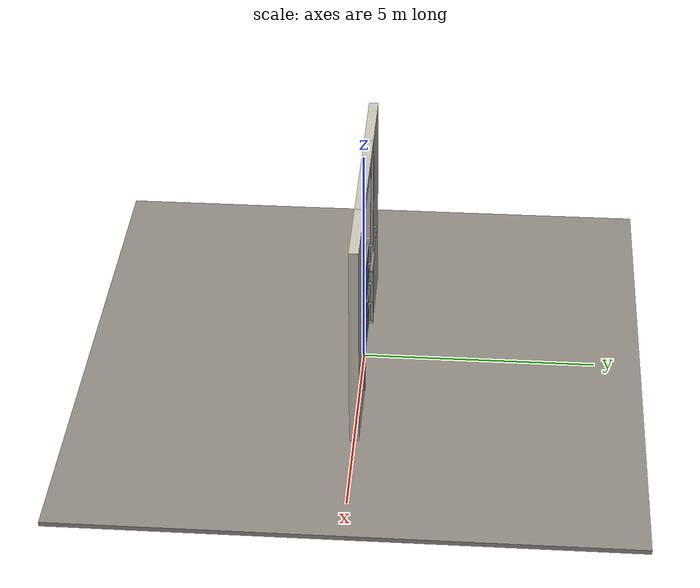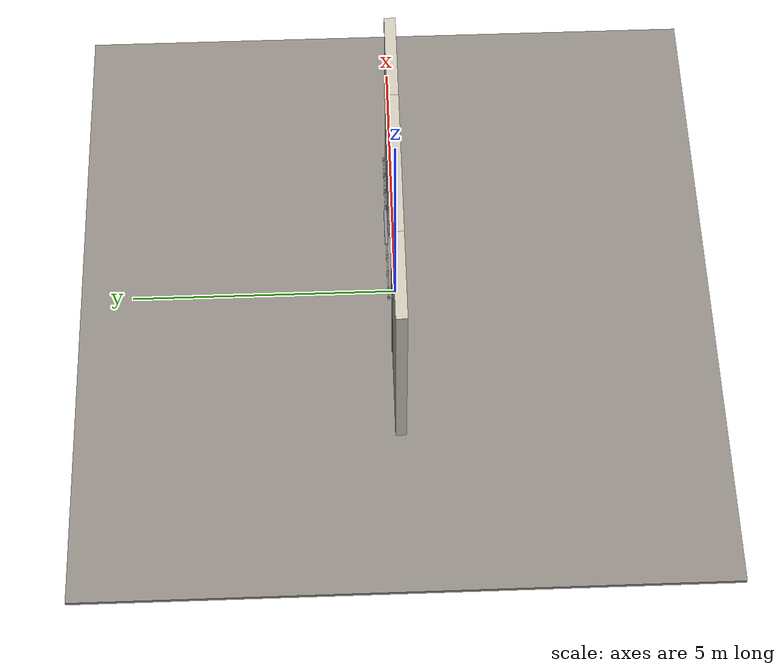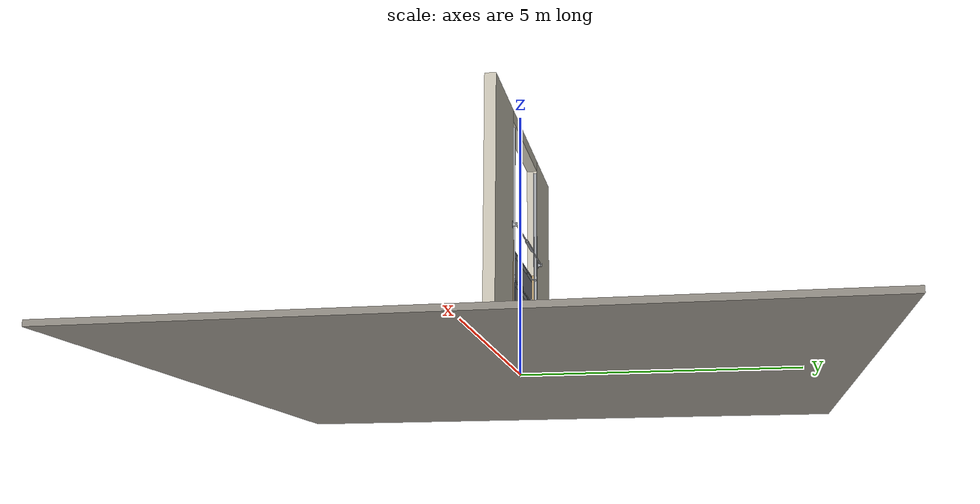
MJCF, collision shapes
<?xml version="1.0" ?>
<mujoco model="db0806_garage_sectional_full">
  <compiler angle="radian" meshdir="../../hardware" texturedir="../../textures" autolimits="true" inertiafromgeom="false"/>
  <option timestep="0.002" integrator="implicitfast" cone="elliptic" impratio="10" noslip_iterations="3">
    <flag multiccd="enable"/>
  </option>
  <size memory="16M"/>
  <default>
    <geom condim="4" solref="0.005 1" solimp="0.95 0.99 0.001"/>
    <joint solreflimit="0.005 1" solimplimit="0.95 0.99 0.001"/>
    <tendon solreflimit="0.005 1"/>
    <equality solref="0.002 1"/>
  </default>
  <visual>
    <headlight ambient="0.4 0.4 0.4" diffuse="0.7 0.7 0.7" specular="0.2 0.2 0.2"/>
    <quality shadowsize="4096"/>
    <map znear="0.01" zfar="60"/>
  </visual>
  <asset>
    <mesh name="pull_bdc5e965ab" file="pull_bdc5e965ab.obj"/>
    <material name="mat_floor" rgba="0.55 0.53 0.5 1" specular="0.2" shininess="0.15" reflectance="0"/>
    <material name="mat_wall" rgba="0.78 0.76 0.7 1" specular="0.2" shininess="0.1" reflectance="0"/>
    <material name="mat_frame" rgba="0.82 0.7 0.5 1" specular="0.2" shininess="0.45" reflectance="0"/>
    <material name="mat_track" rgba="0.65 0.66 0.68 1" specular="0.74" shininess="0.5" reflectance="0.36"/>
    <material name="mat_section_0" rgba="0.5 0.51 0.53 1" specular="0.23" shininess="0.37" reflectance="0.02"/>
    <material name="mat_glass" rgba="0.85 0.92 0.95 0.25" specular="0.2" shininess="0.95" reflectance="0.1"/>
    <material name="mat_section_1" rgba="0.5 0.51 0.53 1" specular="0.23" shininess="0.37" reflectance="0.02"/>
    <material name="mat_hinge_line" rgba="0.2 0.2 0.2 1" specular="0.2" shininess="0.3" reflectance="0"/>
    <material name="mat_section_2" rgba="0.5 0.51 0.53 1" specular="0.23" shininess="0.37" reflectance="0.02"/>
    <material name="mat_section_3" rgba="0.5 0.51 0.53 1" specular="0.23" shininess="0.37" reflectance="0.02"/>
    <material name="mat_spring" rgba="0.55 0.56 0.58 1" specular="0.8" shininess="0.55" reflectance="0.4"/>
    <material name="mat_op_black_matte_metal" rgba="0.05 0.05 0.05 1" specular="0.38" shininess="0.3" reflectance="0.12"/>
    <texture name="skybox" type="skybox" builtin="gradient" rgb1="0.6 0.7 0.85" rgb2="0.9 0.92 0.95" width="256" height="256"/>
  </asset>
  <worldbody>
    <light name="sun" pos="1.5 -2.5 4" dir="-0.3 0.5 -0.8" directional="true" diffuse="0.8 0.8 0.8" specular="0.3 0.3 0.3" castshadow="true"/>
    <light name="fill" pos="-1.5 2.5 3" dir="0.3 -0.5 -0.7" directional="true" diffuse="0.35 0.35 0.4" castshadow="false"/>
    <camera name="robot_view" pos="0 -2.959375 1.918625" xyaxes="1 0 0 0 0.26963 0.962964" fovy="52"/>
    <camera name="far_view" pos="0 2.959375 1.918625" xyaxes="-1 0 0 0 -0.26963 0.962964" fovy="52"/>
    <camera name="iso" pos="2.249125 -2.485875 2.392125" xyaxes="0.741536 0.670913 0 -0.242917 0.268487 0.932151" fovy="46"/>
    <camera name="detail_handle" pos="0.25 -1.1725 1.25" xyaxes="0.975133 0.221621 0 -0.065674 0.288965 0.955084" fovy="38"/>
    <geom name="floor" type="box" size="6 6 0.05" pos="0 0 -0.05" material="mat_floor" group="0" contype="1" conaffinity="1" friction="0.8 0.005 0.0001" density="2400"/>
    <geom name="wall_left" type="box" size="0.8175 0.1 2.305" pos="-2.1825 0 2.305" material="mat_wall" group="0" contype="1" conaffinity="1" friction="0.6 0.005 0.0001" density="800"/>
    <geom name="wall_right" type="box" size="0.8175 0.1 2.305" pos="2.1825 0 2.305" material="mat_wall" group="0" contype="1" conaffinity="1" friction="0.6 0.005 0.0001" density="800"/>
    <geom name="wall_header" type="box" size="1.365 0.1 0.11" pos="0 0 4.5" material="mat_wall" group="0" contype="1" conaffinity="1" friction="0.6 0.005 0.0001" density="800"/>
    <geom name="garage_jamb_l" type="box" size="0.04 0.1 1.09" pos="-1.325 0 1.09" material="mat_frame" group="0" contype="1" conaffinity="1" friction="0.6 0.005 0.0001" density="400"/>
    <geom name="garage_jamb_r" type="box" size="0.04 0.1 1.09" pos="1.325 0 1.09" material="mat_frame" group="0" contype="1" conaffinity="1" friction="0.6 0.005 0.0001" density="400"/>
    <geom name="track_l" type="box" size="0.004 0.033 2.155" pos="-1.27 0.0825 2.155" material="mat_track" group="0" contype="1" conaffinity="1" friction="0.6 0.005 0.0001" density="7850"/>
    <geom name="track_l_flange_n" type="box" size="0.022 0.004 2.155" pos="-1.252 0.0535 2.155" material="mat_track" group="0" contype="1" conaffinity="1" friction="0.6 0.005 0.0001" density="7850"/>
    <geom name="track_l_flange_p" type="box" size="0.022 0.004 2.155" pos="-1.252 0.1115 2.155" material="mat_track" group="0" contype="1" conaffinity="1" friction="0.6 0.005 0.0001" density="7850"/>
    <geom name="track_r" type="box" size="0.004 0.033 2.155" pos="1.27 0.0825 2.155" material="mat_track" group="0" contype="1" conaffinity="1" friction="0.6 0.005 0.0001" density="7850"/>
    <geom name="track_r_flange_n" type="box" size="0.022 0.004 2.155" pos="1.252 0.0535 2.155" material="mat_track" group="0" contype="1" conaffinity="1" friction="0.6 0.005 0.0001" density="7850"/>
    <geom name="track_r_flange_p" type="box" size="0.022 0.004 2.155" pos="1.252 0.1115 2.155" material="mat_track" group="0" contype="1" conaffinity="1" friction="0.6 0.005 0.0001" density="7850"/>
    <geom name="torsion_shaft" type="cylinder" size="0.013 1.475" pos="0 0.17 2.43" quat="0.707107 0 0.707107 0" material="mat_track" group="0" contype="1" conaffinity="1" friction="0.6 0.005 0.0001" density="7850"/>
    <geom name="torsion_spring" type="cylinder" size="0.03 0.35" pos="0 0.17 2.43" quat="0.707107 0 0.707107 0" material="mat_spring" group="1" contype="0" conaffinity="0" density="7850"/>
    <geom name="torsion_bearing_plate_l" type="box" size="0.055 0.004 0.055" pos="-1.425 0.104 2.43" material="mat_track" group="1" contype="0" conaffinity="0" density="7850"/>
    <geom name="torsion_bearing_arm_l" type="box" size="0.008 0.049 0.03" pos="-1.425 0.139 2.43" material="mat_track" group="1" contype="0" conaffinity="0" density="7850"/>
    <geom name="torsion_bearing_plate_r" type="box" size="0.055 0.004 0.055" pos="1.425 0.104 2.43" material="mat_track" group="1" contype="0" conaffinity="0" density="7850"/>
    <geom name="torsion_bearing_arm_r" type="box" size="0.008 0.049 0.03" pos="1.425 0.139 2.43" material="mat_track" group="1" contype="0" conaffinity="0" density="7850"/>
    <site name="approach_point" pos="0 -2 0" quat="1 0 0 0" size="0.05" rgba="0.2 0.9 0.2 0.5" group="4"/>
    <site name="goal_point" pos="0 2 0" quat="1 0 0 0" size="0.05" rgba="0.2 0.9 0.2 0.5" group="4"/>
    <site name="door_plane_center" pos="0 0 1.09" quat="1 0 0 0" size="0.02" rgba="0.2 0.9 0.2 0.5" group="4"/>
    <body name="door" pos="0 0 0">
      <inertial pos="0 0.011607 1.072077" mass="55.844983" quat="0.707112 -0.707102 0 0" diaginertia="20.053782594 35.72060778 55.695736131"/>
      <joint name="door_slide" type="slide" axis="0 0 1" limited="true" range="0 2.08" damping="4.792249" frictionloss="35.597393" armature="0.5"/>
      <geom name="section_0_slab" type="box" size="1.22 0.0225 0.26625" pos="0 0 0.27625" material="mat_section_0" group="0" contype="1" conaffinity="1" friction="0.4 0.005 0.0001" density="1"/>
      <geom name="section_0_glass_0" type="box" size="0.2775 0.0233 0.0426" pos="-0.8925 0 0.46795" material="mat_glass" group="1" contype="0" conaffinity="0" density="1"/>
      <geom name="section_0_glass_1" type="box" size="0.2775 0.0233 0.0426" pos="-0.2975 0 0.46795" material="mat_glass" group="1" contype="0" conaffinity="0" density="1"/>
      <geom name="section_0_glass_2" type="box" size="0.2775 0.0233 0.0426" pos="0.2975 0 0.46795" material="mat_glass" group="1" contype="0" conaffinity="0" density="1"/>
      <geom name="section_0_glass_3" type="box" size="0.2775 0.0233 0.0426" pos="0.8925 0 0.46795" material="mat_glass" group="1" contype="0" conaffinity="0" density="1"/>
      <geom name="section_1_slab" type="box" size="1.22 0.0225 0.26625" pos="0 0 0.80875" material="mat_section_1" group="0" contype="1" conaffinity="1" friction="0.4 0.005 0.0001" density="1"/>
      <geom name="section_1_glass_0" type="box" size="0.2775 0.0233 0.0426" pos="-0.8925 0 1.00045" material="mat_glass" group="1" contype="0" conaffinity="0" density="1"/>
      <geom name="section_1_glass_1" type="box" size="0.2775 0.0233 0.0426" pos="-0.2975 0 1.00045" material="mat_glass" group="1" contype="0" conaffinity="0" density="1"/>
      <geom name="section_1_glass_2" type="box" size="0.2775 0.0233 0.0426" pos="0.2975 0 1.00045" material="mat_glass" group="1" contype="0" conaffinity="0" density="1"/>
      <geom name="section_1_glass_3" type="box" size="0.2775 0.0233 0.0426" pos="0.8925 0 1.00045" material="mat_glass" group="1" contype="0" conaffinity="0" density="1"/>
      <geom name="section_hinge_line_1" type="box" size="1.2 0.001 0.004" pos="0 0.0235 0.5425" material="mat_hinge_line" group="1" contype="0" conaffinity="0" density="1"/>
      <geom name="section_hinge_1_132" type="box" size="0.04 0.01 0.05" pos="-1.12 0.0325 0.5425" material="mat_track" group="1" contype="0" conaffinity="0" density="7850"/>
      <geom name="section_hinge_1_244" type="box" size="0.04 0.01 0.05" pos="0 0.0325 0.5425" material="mat_track" group="1" contype="0" conaffinity="0" density="7850"/>
      <geom name="section_hinge_1_355" type="box" size="0.04 0.01 0.05" pos="1.12 0.0325 0.5425" material="mat_track" group="1" contype="0" conaffinity="0" density="7850"/>
      <geom name="section_2_slab" type="box" size="1.22 0.0225 0.26625" pos="0 0 1.34125" material="mat_section_2" group="0" contype="1" conaffinity="1" friction="0.4 0.005 0.0001" density="1"/>
      <geom name="section_2_glass_0" type="box" size="0.2775 0.0233 0.0426" pos="-0.8925 0 1.53295" material="mat_glass" group="1" contype="0" conaffinity="0" density="1"/>
      <geom name="section_2_glass_1" type="box" size="0.2775 0.0233 0.0426" pos="-0.2975 0 1.53295" material="mat_glass" group="1" contype="0" conaffinity="0" density="1"/>
      <geom name="section_2_glass_2" type="box" size="0.2775 0.0233 0.0426" pos="0.2975 0 1.53295" material="mat_glass" group="1" contype="0" conaffinity="0" density="1"/>
      <geom name="section_2_glass_3" type="box" size="0.2775 0.0233 0.0426" pos="0.8925 0 1.53295" material="mat_glass" group="1" contype="0" conaffinity="0" density="1"/>
      <geom name="section_hinge_line_2" type="box" size="1.2 0.001 0.004" pos="0 0.0235 1.075" material="mat_hinge_line" group="1" contype="0" conaffinity="0" density="1"/>
      <geom name="section_hinge_2_132" type="box" size="0.04 0.01 0.05" pos="-1.12 0.0325 1.075" material="mat_track" group="1" contype="0" conaffinity="0" density="7850"/>
      <geom name="section_hinge_2_244" type="box" size="0.04 0.01 0.05" pos="0 0.0325 1.075" material="mat_track" group="1" contype="0" conaffinity="0" density="7850"/>
      <geom name="section_hinge_2_355" type="box" size="0.04 0.01 0.05" pos="1.12 0.0325 1.075" material="mat_track" group="1" contype="0" conaffinity="0" density="7850"/>
      <geom name="section_3_slab" type="box" size="1.22 0.0225 0.26625" pos="0 0 1.87375" material="mat_section_3" group="0" contype="1" conaffinity="1" friction="0.4 0.005 0.0001" density="1"/>
      <geom name="section_3_glass_0" type="box" size="0.2775 0.0233 0.0426" pos="-0.8925 0 2.06545" material="mat_glass" group="1" contype="0" conaffinity="0" density="1"/>
      <geom name="section_3_glass_1" type="box" size="0.2775 0.0233 0.0426" pos="-0.2975 0 2.06545" material="mat_glass" group="1" contype="0" conaffinity="0" density="1"/>
      <geom name="section_3_glass_2" type="box" size="0.2775 0.0233 0.0426" pos="0.2975 0 2.06545" material="mat_glass" group="1" contype="0" conaffinity="0" density="1"/>
      <geom name="section_3_glass_3" type="box" size="0.2775 0.0233 0.0426" pos="0.8925 0 2.06545" material="mat_glass" group="1" contype="0" conaffinity="0" density="1"/>
      <geom name="section_hinge_line_3" type="box" size="1.2 0.001 0.004" pos="0 0.0235 1.6075" material="mat_hinge_line" group="1" contype="0" conaffinity="0" density="1"/>
      <geom name="section_hinge_3_132" type="box" size="0.04 0.01 0.05" pos="-1.12 0.0325 1.6075" material="mat_track" group="1" contype="0" conaffinity="0" density="7850"/>
      <geom name="section_hinge_3_244" type="box" size="0.04 0.01 0.05" pos="0 0.0325 1.6075" material="mat_track" group="1" contype="0" conaffinity="0" density="7850"/>
      <geom name="section_hinge_3_355" type="box" size="0.04 0.01 0.05" pos="1.12 0.0325 1.6075" material="mat_track" group="1" contype="0" conaffinity="0" density="7850"/>
      <geom name="roller_l_0" type="cylinder" size="0.025 0.01" pos="-1.25 0.0825 0.04" quat="0.707107 0 0.707107 0" material="mat_track" group="1" contype="0" conaffinity="0" density="7850"/>
      <geom name="roller_stem_l_0" type="cylinder" size="0.006 0.027" pos="-1.225 0.0825 0.04" quat="0.707107 0 0.707107 0" material="mat_track" group="1" contype="0" conaffinity="0" density="7850"/>
      <geom name="roller_arm_l_0" type="box" size="0.03 0.03 0.006" pos="-1.2 0.0525 0.04" material="mat_track" group="1" contype="0" conaffinity="0" density="7850"/>
      <geom name="roller_l_1" type="cylinder" size="0.025 0.01" pos="-1.25 0.0825 0.5425" quat="0.707107 0 0.707107 0" material="mat_track" group="1" contype="0" conaffinity="0" density="7850"/>
      <geom name="roller_stem_l_1" type="cylinder" size="0.006 0.027" pos="-1.225 0.0825 0.5425" quat="0.707107 0 0.707107 0" material="mat_track" group="1" contype="0" conaffinity="0" density="7850"/>
      <geom name="roller_arm_l_1" type="box" size="0.03 0.03 0.006" pos="-1.2 0.0525 0.5425" material="mat_track" group="1" contype="0" conaffinity="0" density="7850"/>
      <geom name="roller_l_2" type="cylinder" size="0.025 0.01" pos="-1.25 0.0825 1.075" quat="0.707107 0 0.707107 0" material="mat_track" group="1" contype="0" conaffinity="0" density="7850"/>
      <geom name="roller_stem_l_2" type="cylinder" size="0.006 0.027" pos="-1.225 0.0825 1.075" quat="0.707107 0 0.707107 0" material="mat_track" group="1" contype="0" conaffinity="0" density="7850"/>
      <geom name="roller_arm_l_2" type="box" size="0.03 0.03 0.006" pos="-1.2 0.0525 1.075" material="mat_track" group="1" contype="0" conaffinity="0" density="7850"/>
      <geom name="roller_l_3" type="cylinder" size="0.025 0.01" pos="-1.25 0.0825 1.6075" quat="0.707107 0 0.707107 0" material="mat_track" group="1" contype="0" conaffinity="0" density="7850"/>
      <geom name="roller_stem_l_3" type="cylinder" size="0.006 0.027" pos="-1.225 0.0825 1.6075" quat="0.707107 0 0.707107 0" material="mat_track" group="1" contype="0" conaffinity="0" density="7850"/>
      <geom name="roller_arm_l_3" type="box" size="0.03 0.03 0.006" pos="-1.2 0.0525 1.6075" material="mat_track" group="1" contype="0" conaffinity="0" density="7850"/>
      <geom name="roller_l_4" type="cylinder" size="0.025 0.01" pos="-1.25 0.0825 2.08" quat="0.707107 0 0.707107 0" material="mat_track" group="1" contype="0" conaffinity="0" density="7850"/>
      <geom name="roller_stem_l_4" type="cylinder" size="0.006 0.027" pos="-1.225 0.0825 2.08" quat="0.707107 0 0.707107 0" material="mat_track" group="1" contype="0" conaffinity="0" density="7850"/>
      <geom name="roller_arm_l_4" type="box" size="0.03 0.03 0.006" pos="-1.2 0.0525 2.08" material="mat_track" group="1" contype="0" conaffinity="0" density="7850"/>
      <geom name="roller_r_0" type="cylinder" size="0.025 0.01" pos="1.25 0.0825 0.04" quat="0.707107 0 0.707107 0" material="mat_track" group="1" contype="0" conaffinity="0" density="7850"/>
      <geom name="roller_stem_r_0" type="cylinder" size="0.006 0.027" pos="1.225 0.0825 0.04" quat="0.707107 0 0.707107 0" material="mat_track" group="1" contype="0" conaffinity="0" density="7850"/>
      <geom name="roller_arm_r_0" type="box" size="0.03 0.03 0.006" pos="1.2 0.0525 0.04" material="mat_track" group="1" contype="0" conaffinity="0" density="7850"/>
      <geom name="roller_r_1" type="cylinder" size="0.025 0.01" pos="1.25 0.0825 0.5425" quat="0.707107 0 0.707107 0" material="mat_track" group="1" contype="0" conaffinity="0" density="7850"/>
      <geom name="roller_stem_r_1" type="cylinder" size="0.006 0.027" pos="1.225 0.0825 0.5425" quat="0.707107 0 0.707107 0" material="mat_track" group="1" contype="0" conaffinity="0" density="7850"/>
      <geom name="roller_arm_r_1" type="box" size="0.03 0.03 0.006" pos="1.2 0.0525 0.5425" material="mat_track" group="1" contype="0" conaffinity="0" density="7850"/>
      <geom name="roller_r_2" type="cylinder" size="0.025 0.01" pos="1.25 0.0825 1.075" quat="0.707107 0 0.707107 0" material="mat_track" group="1" contype="0" conaffinity="0" density="7850"/>
      <geom name="roller_stem_r_2" type="cylinder" size="0.006 0.027" pos="1.225 0.0825 1.075" quat="0.707107 0 0.707107 0" material="mat_track" group="1" contype="0" conaffinity="0" density="7850"/>
      <geom name="roller_arm_r_2" type="box" size="0.03 0.03 0.006" pos="1.2 0.0525 1.075" material="mat_track" group="1" contype="0" conaffinity="0" density="7850"/>
      <geom name="roller_r_3" type="cylinder" size="0.025 0.01" pos="1.25 0.0825 1.6075" quat="0.707107 0 0.707107 0" material="mat_track" group="1" contype="0" conaffinity="0" density="7850"/>
      <geom name="roller_stem_r_3" type="cylinder" size="0.006 0.027" pos="1.225 0.0825 1.6075" quat="0.707107 0 0.707107 0" material="mat_track" group="1" contype="0" conaffinity="0" density="7850"/>
      <geom name="roller_arm_r_3" type="box" size="0.03 0.03 0.006" pos="1.2 0.0525 1.6075" material="mat_track" group="1" contype="0" conaffinity="0" density="7850"/>
      <geom name="roller_r_4" type="cylinder" size="0.025 0.01" pos="1.25 0.0825 2.08" quat="0.707107 0 0.707107 0" material="mat_track" group="1" contype="0" conaffinity="0" density="7850"/>
      <geom name="roller_stem_r_4" type="cylinder" size="0.006 0.027" pos="1.225 0.0825 2.08" quat="0.707107 0 0.707107 0" material="mat_track" group="1" contype="0" conaffinity="0" density="7850"/>
      <geom name="roller_arm_r_4" type="box" size="0.03 0.03 0.006" pos="1.2 0.0525 2.08" material="mat_track" group="1" contype="0" conaffinity="0" density="7850"/>
      <geom name="lift_handle_n" type="mesh" mesh="pull_bdc5e965ab" pos="0 -0.0225 0.9" quat="0.707107 0.707107 0 0" material="mat_op_black_matte_metal" group="1" contype="0" conaffinity="0" density="3000"/>
      <geom name="lift_handle_col_n" type="box" size="0.1 0.006 0.015" pos="0 -0.0725 0.9" material="mat_op_black_matte_metal" group="3" contype="1" conaffinity="1" rgba="0.8 0.3 0.3 0.25" friction="0.6 0.005 0.0001" density="3000"/>
      <geom name="lift_handle_p" type="mesh" mesh="pull_bdc5e965ab" pos="0 0.0225 0.9" quat="-0.707107 0.707107 0 0" material="mat_op_black_matte_metal" group="1" contype="0" conaffinity="0" density="3000"/>
      <geom name="lift_handle_col_p" type="box" size="0.1 0.006 0.015" pos="0 0.0725 0.9" material="mat_op_black_matte_metal" group="3" contype="1" conaffinity="1" rgba="0.8 0.3 0.3 0.25" friction="0.6 0.005 0.0001" density="3000"/>
      <site name="lift_handle_grip_n" pos="0 -0.0725 0.9" quat="1 0 0 0" size="0.012" rgba="0.2 0.9 0.2 0.5" group="4"/>
      <site name="lift_handle_grip_p" pos="0 0.0725 0.9" quat="1 0 0 0" size="0.012" rgba="0.2 0.9 0.2 0.5" group="4"/>
    </body>
  </worldbody>
  <sensor>
    <jointpos name="door_slide_pos" joint="door_slide"/>
    <jointvel name="door_slide_vel" joint="door_slide"/>
  </sensor>
</mujoco>
